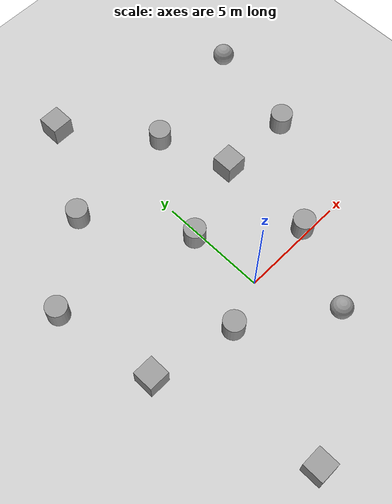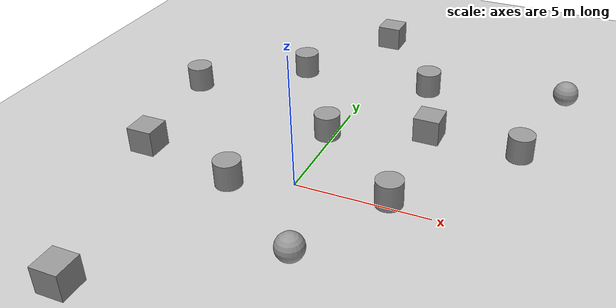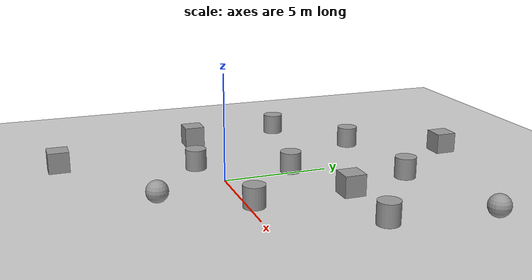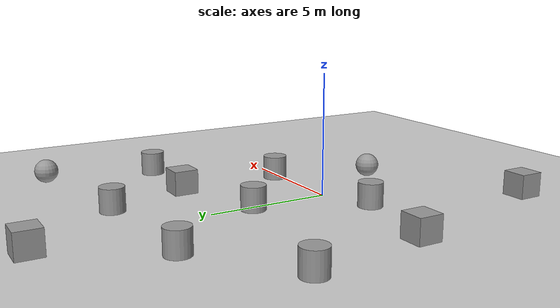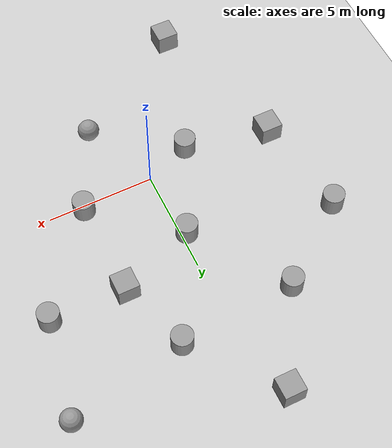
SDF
<sdf version="1.7">
 <world name="default">
  <light name="sun" type="directional">
   <pose>0 0 10 0 -0 0</pose>
   <diffuse>0.8 0.8 0.8 1</diffuse>
   <specular>0.2 0.2 0.2 1</specular>
   <attenuation>
    <range>1000</range>
    <constant>0.9</constant>
    <linear>0.01</linear>
    <quadratic>0.001</quadratic>
   </attenuation>
   <direction>-0.5 0.1 -0.9</direction>
   <spot><inner_angle>0</inner_angle><outer_angle>0</outer_angle><falloff>0</falloff></spot>
  </light>
  <model name="ground_plane">
   <static>1</static>
   <link name="link">
    <collision name="collision">
     <geometry><plane><normal>0 0 1</normal><size>100 100</size></plane></geometry>
     <surface>
      <contact><collide_bitmask>65535</collide_bitmask></contact>
      <friction><ode><mu>100</mu><mu2>50</mu2></ode></friction>
     </surface>
    </collision>
    <visual name="visual">
     <cast_shadows>0</cast_shadows>
     <geometry><plane><normal>0 0 1</normal><size>100 100</size></plane></geometry>
     <material>
      <script><uri>file://media/materials/scripts/gazebo.material</uri><name>Gazebo/Grey</name></script>
     </material>
    </visual>
   </link>
  </model>
  <gravity>0 0 -9.8</gravity>
  <magnetic_field>6e-06 2.3e-05 -4.2e-05</magnetic_field>
  <atmosphere type="adiabatic"/>
  <physics type="ode">
   <max_step_size>0.001</max_step_size>
   <real_time_factor>1</real_time_factor>
   <real_time_update_rate>300</real_time_update_rate>
  </physics>
  <scene><ambient>0.4 0.4 0.4 1</ambient><background>0.7 0.7 0.7 1</background><shadows>1</shadows></scene>
  <audio><device>default</device></audio>
  <spherical_coordinates>
   <surface_model>EARTH_WGS84</surface_model>
   <latitude_deg>38.42390688</latitude_deg>
   <longitude_deg>110.7852678</longitude_deg>
   <elevation>102.0</elevation>
   <heading_deg>0</heading_deg>
  </spherical_coordinates>
  <model name="unit_cylinder">
   <pose>-0.253708 3.34535 0.499992 -3e-06 3e-06 0</pose>
   <link name="link">
    <inertial>
     <mass>1</mass>
     <inertia><ixx>0.145833</ixx><ixy>0</ixy><ixz>0</ixz><iyy>0.145833</iyy><iyz>0</iyz><izz>0.125</izz></inertia>
    </inertial>
    <collision name="collision">
     <geometry><cylinder><radius>0.5</radius><length>1</length></cylinder></geometry>
    </collision>
    <visual name="visual">
     <geometry><cylinder><radius>0.5</radius><length>1</length></cylinder></geometry>
     <material>
      <script><name>Gazebo/Grey</name><uri>file://media/materials/scripts/gazebo.material</uri></script>
     </material>
    </visual>
   </link>
  </model>
  <model name="unit_sphere">
   <pose>1.5967 -3.46663 0.5 0 -0 0</pose>
   <link name="link">
    <inertial>
     <mass>1</mass>
     <inertia><ixx>0.1</ixx><ixy>0</ixy><ixz>0</ixz><iyy>0.1</iyy><iyz>0</iyz><izz>0.1</izz></inertia>
    </inertial>
    <collision name="collision"><geometry><sphere><radius>0.5</radius></sphere></geometry></collision>
    <visual name="visual">
     <geometry><sphere><radius>0.5</radius></sphere></geometry>
     <material>
      <script><name>Gazebo/Grey</name><uri>file://media/materials/scripts/gazebo.material</uri></script>
     </material>
    </visual>
   </link>
  </model>
  <model name="unit_box">
   <pose>-6.07308 0.052293 0.499995 0 1e-05 0</pose>
   <link name="link">
    <inertial>
     <mass>1</mass>
     <inertia>
      <ixx>0.166667</ixx>
      <ixy>0</ixy>
      <ixz>0</ixz>
      <iyy>0.166667</iyy>
      <iyz>0</iyz>
      <izz>0.166667</izz>
     </inertia>
    </inertial>
    <collision name="collision"><geometry><box><size>1 1 1</size></box></geometry></collision>
    <visual name="visual">
     <geometry><box><size>1 1 1</size></box></geometry>
     <material>
      <script><name>Gazebo/Grey</name><uri>file://media/materials/scripts/gazebo.material</uri></script>
     </material>
    </visual>
   </link>
  </model>
  <model name="unit_cylinder_0">
   <pose>3.40942 0.261562 0.499998 3e-06 -3e-06 0</pose>
   <link name="link">
    <inertial>
     <mass>1</mass>
     <inertia><ixx>0.145833</ixx><ixy>0</ixy><ixz>0</ixz><iyy>0.145833</iyy><iyz>0</iyz><izz>0.125</izz></inertia>
    </inertial>
    <collision name="collision">
     <geometry><cylinder><radius>0.5</radius><length>1</length></cylinder></geometry>
    </collision>
    <visual name="visual">
     <geometry><cylinder><radius>0.5</radius><length>1</length></cylinder></geometry>
     <material>
      <script><name>Gazebo/Grey</name><uri>file://media/materials/scripts/gazebo.material</uri></script>
     </material>
    </visual>
   </link>
  </model>
  <model name="unit_cylinder_1">
   <pose>-6.85706 4.87699 0.499992 -3e-06 3e-06 0</pose>
   <link name="link">
    <inertial>
     <mass>1</mass>
     <inertia><ixx>0.145833</ixx><ixy>0</ixy><ixz>0</ixz><iyy>0.145833</iyy><iyz>0</iyz><izz>0.125</izz></inertia>
    </inertial>
    <collision name="collision">
     <geometry><cylinder><radius>0.5</radius><length>1</length></cylinder></geometry>
    </collision>
    <visual name="visual">
     <geometry><cylinder><radius>0.5</radius><length>1</length></cylinder></geometry>
     <material>
      <script><name>Gazebo/Grey</name><uri>file://media/materials/scripts/gazebo.material</uri></script>
     </material>
    </visual>
   </link>
  </model>
  <model name="unit_cylinder_2">
   <pose>-2.15443 -0.792862 0.499998 3e-06 -4e-06 0</pose>
   <link name="link">
    <inertial>
     <mass>1</mass>
     <inertia><ixx>0.145833</ixx><ixy>0</ixy><ixz>0</ixz><iyy>0.145833</iyy><iyz>0</iyz><izz>0.125</izz></inertia>
    </inertial>
    <collision name="collision">
     <geometry><cylinder><radius>0.5</radius><length>1</length></cylinder></geometry>
    </collision>
    <visual name="visual">
     <geometry><cylinder><radius>0.5</radius><length>1</length></cylinder></geometry>
     <material>
      <script><name>Gazebo/Grey</name><uri>file://media/materials/scripts/gazebo.material</uri></script>
     </material>
    </visual>
   </link>
  </model>
  <model name="unit_box_0">
   <pose>-4.05077 -7.0709 0.499995 0 1e-05 0</pose>
   <link name="link">
    <inertial>
     <mass>1</mass>
     <inertia>
      <ixx>0.166667</ixx>
      <ixy>0</ixy>
      <ixz>0</ixz>
      <iyy>0.166667</iyy>
      <iyz>0</iyz>
      <izz>0.166667</izz>
     </inertia>
    </inertial>
    <collision name="collision"><geometry><box><size>1 1 1</size></box></geometry></collision>
    <visual name="visual">
     <geometry><box><size>1 1 1</size></box></geometry>
     <material>
      <script><name>Gazebo/Grey</name><uri>file://media/materials/scripts/gazebo.material</uri></script>
     </material>
    </visual>
   </link>
  </model>
  <model name="unit_cylinder_3">
   <pose>2.25622 8.07664 0.499998 3e-06 -4e-06 0</pose>
   <link name="link">
    <inertial>
     <mass>1</mass>
     <inertia><ixx>0.145833</ixx><ixy>0</ixy><ixz>0</ixz><iyy>0.145833</iyy><iyz>0</iyz><izz>0.125</izz></inertia>
    </inertial>
    <collision name="collision">
     <geometry><cylinder><radius>0.5</radius><length>1</length></cylinder></geometry>
    </collision>
    <visual name="visual">
     <geometry><cylinder><radius>0.5</radius><length>1</length></cylinder></geometry>
     <material>
      <script><name>Gazebo/Grey</name><uri>file://media/materials/scripts/gazebo.material</uri></script>
     </material>
    </visual>
   </link>
  </model>
  <model name="unit_cylinder_4">
   <pose>-3.19953 7.70302 0.499992 -3e-06 -4e-06 -0</pose>
   <link name="link">
    <inertial>
     <mass>1</mass>
     <inertia><ixx>0.145833</ixx><ixy>0</ixy><ixz>0</ixz><iyy>0.145833</iyy><iyz>0</iyz><izz>0.125</izz></inertia>
    </inertial>
    <collision name="collision">
     <geometry><cylinder><radius>0.5</radius><length>1</length></cylinder></geometry>
    </collision>
    <visual name="visual">
     <geometry><cylinder><radius>0.5</radius><length>1</length></cylinder></geometry>
     <material>
      <script><name>Gazebo/Grey</name><uri>file://media/materials/scripts/gazebo.material</uri></script>
     </material>
    </visual>
   </link>
  </model>
  <model name="unit_cylinder_5">
   <pose>6.87084 4.67824 0.499993 -3e-06 -3e-06 0</pose>
   <link name="link">
    <inertial>
     <mass>1</mass>
     <inertia><ixx>0.145833</ixx><ixy>0</ixy><ixz>0</ixz><iyy>0.145833</iyy><iyz>0</iyz><izz>0.125</izz></inertia>
    </inertial>
    <collision name="collision">
     <geometry><cylinder><radius>0.5</radius><length>1</length></cylinder></geometry>
    </collision>
    <visual name="visual">
     <geometry><cylinder><radius>0.5</radius><length>1</length></cylinder></geometry>
     <material>
      <script><name>Gazebo/Grey</name><uri>file://media/materials/scripts/gazebo.material</uri></script>
     </material>
    </visual>
   </link>
  </model>
  <model name="unit_sphere_0">
   <pose>7.74502 9.23594 0.5 0 -0 0</pose>
   <link name="link">
    <inertial>
     <mass>1</mass>
     <inertia><ixx>0.1</ixx><ixy>0</ixy><ixz>0</ixz><iyy>0.1</iyy><iyz>0</iyz><izz>0.1</izz></inertia>
    </inertial>
    <collision name="collision"><geometry><sphere><radius>0.5</radius></sphere></geometry></collision>
    <visual name="visual">
     <geometry><sphere><radius>0.5</radius></sphere></geometry>
     <material>
      <script><name>Gazebo/Grey</name><uri>file://media/materials/scripts/gazebo.material</uri></script>
     </material>
    </visual>
   </link>
  </model>
  <model name="unit_box_1">
   <pose>-0.754271 11.8894 0.499995 -1e-05 -0 0</pose>
   <link name="link">
    <inertial>
     <mass>1</mass>
     <inertia>
      <ixx>0.166667</ixx>
      <ixy>0</ixy>
      <ixz>0</ixz>
      <iyy>0.166667</iyy>
      <iyz>0</iyz>
      <izz>0.166667</izz>
     </inertia>
    </inertial>
    <collision name="collision"><geometry><box><size>1 1 1</size></box></geometry></collision>
    <visual name="visual">
     <geometry><box><size>1 1 1</size></box></geometry>
     <material>
      <script><name>Gazebo/Grey</name><uri>file://media/materials/scripts/gazebo.material</uri></script>
     </material>
    </visual>
   </link>
  </model>
  <model name="unit_box_2">
   <pose>3.37401 4.73927 0.5 0 -0 0</pose>
   <link name="link">
    <inertial>
     <mass>1</mass>
     <inertia>
      <ixx>0.166667</ixx>
      <ixy>0</ixy>
      <ixz>0</ixz>
      <iyy>0.166667</iyy>
      <iyz>0</iyz>
      <izz>0.166667</izz>
     </inertia>
    </inertial>
    <collision name="collision"><geometry><box><size>1 1 1</size></box></geometry></collision>
    <visual name="visual">
     <geometry><box><size>1 1 1</size></box></geometry>
     <material>
      <script><name>Gazebo/Grey</name><uri>file://media/materials/scripts/gazebo.material</uri></script>
     </material>
    </visual>
   </link>
  </model>
 </world>
</sdf>
